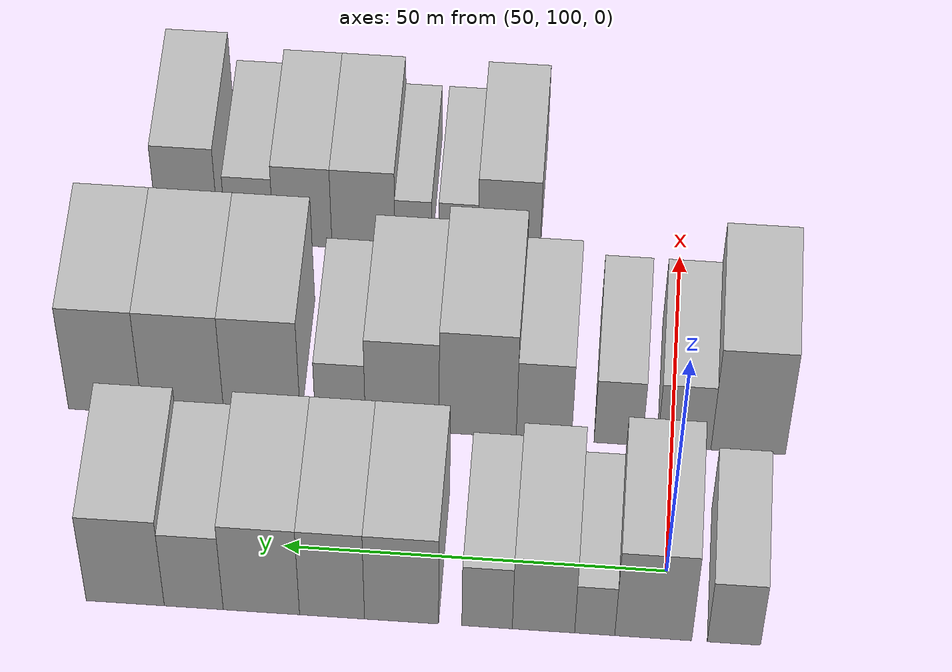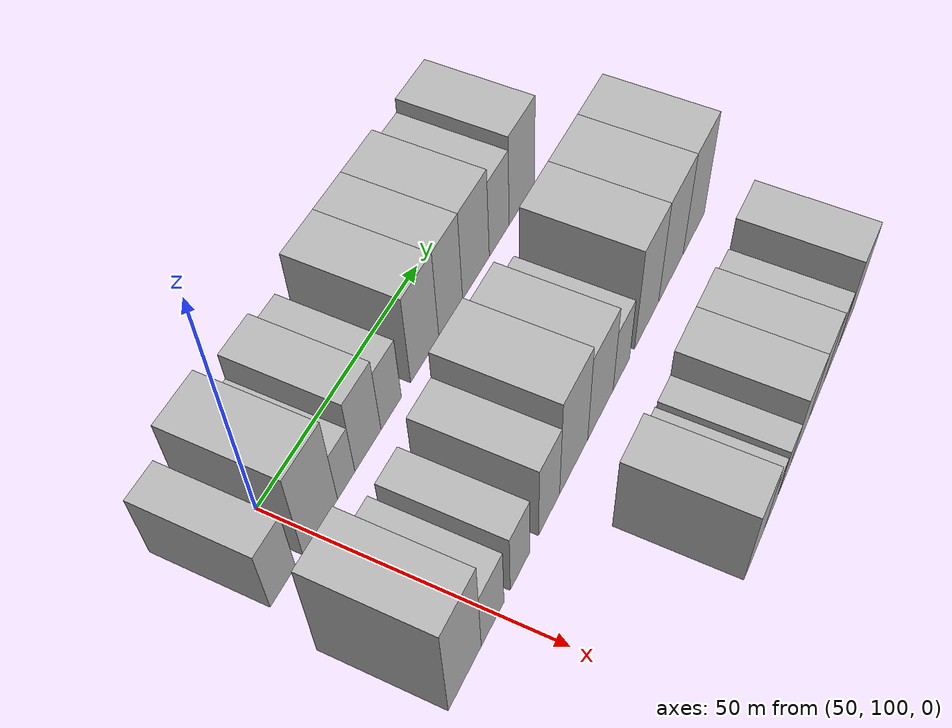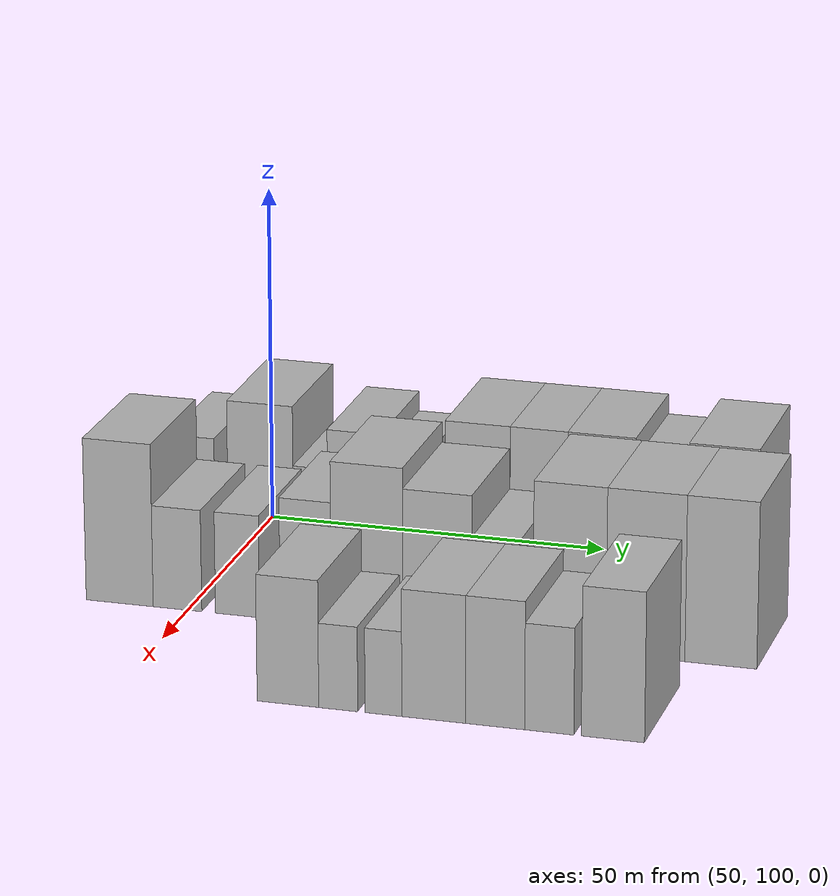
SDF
<sdf version="1.6">
 <world name="default">
  <model name="building_44">
   <static>1</static>
   <pose>50.0000 91.0209 0 0.000000 0.000000 0.000000</pose>
   <link name="link">
    <pose>0 0 7.50 0 0 0</pose>
    <collision name="collision"><geometry><box><size>20.0000 6.8283 15.0000</size></box></geometry></collision>
    <visual name="visual">
     <cast_shadows>0</cast_shadows>
     <geometry><box><size>20.0000 6.8283 15.0000</size></box></geometry>
     <material>
      <script>
       <uri>model://HANNAS_wall/materials/scripts</uri>
       <uri>model://HANNAS_wall/materials/textures</uri>
       <name>vrc/HANNAS_wall</name>
      </script>
     </material>
    </visual>
   </link>
  </model>
  <model name="building_45">
   <static>1</static>
   <pose>50.0000 101.3744 0 0.000000 0.000000 0.000000</pose>
   <link name="link">
    <pose>0 0 10.50 0 0 0</pose>
    <collision name="collision"><geometry><box><size>20.0000 9.8787 21.0000</size></box></geometry></collision>
    <visual name="visual">
     <cast_shadows>0</cast_shadows>
     <geometry><box><size>20.0000 9.8787 21.0000</size></box></geometry>
     <material>
      <script>
       <uri>model://HANNAS_wall/materials/scripts</uri>
       <uri>model://HANNAS_wall/materials/textures</uri>
       <name>vrc/HANNAS_wall</name>
      </script>
     </material>
    </visual>
   </link>
  </model>
  <model name="building_46">
   <static>1</static>
   <pose>50.0000 108.8931 0 0.000000 0.000000 0.000000</pose>
   <link name="link">
    <pose>0 0 6.00 0 0 0</pose>
    <collision name="collision"><geometry><box><size>20.0000 5.1587 12.0000</size></box></geometry></collision>
    <visual name="visual">
     <cast_shadows>0</cast_shadows>
     <geometry><box><size>20.0000 5.1587 12.0000</size></box></geometry>
     <material>
      <script>
       <uri>model://HANNAS_wall/materials/scripts</uri>
       <uri>model://HANNAS_wall/materials/textures</uri>
       <name>vrc/HANNAS_wall</name>
      </script>
     </material>
    </visual>
   </link>
  </model>
  <model name="building_47">
   <static>1</static>
   <pose>50.0000 115.4869 0 0.000000 0.000000 0.000000</pose>
   <link name="link">
    <pose>0 0 9.00 0 0 0</pose>
    <collision name="collision"><geometry><box><size>20.0000 8.0289 18.0000</size></box></geometry></collision>
    <visual name="visual">
     <cast_shadows>0</cast_shadows>
     <geometry><box><size>20.0000 8.0289 18.0000</size></box></geometry>
     <material>
      <script>
       <uri>model://HANNAS_wall/materials/scripts</uri>
       <uri>model://HANNAS_wall/materials/textures</uri>
       <name>vrc/HANNAS_wall</name>
      </script>
     </material>
    </visual>
   </link>
  </model>
  <model name="building_48">
   <static>1</static>
   <pose>50.0000 122.7543 0 0.000000 0.000000 0.000000</pose>
   <link name="link">
    <pose>0 0 7.50 0 0 0</pose>
    <collision name="collision"><geometry><box><size>20.0000 6.5058 15.0000</size></box></geometry></collision>
    <visual name="visual">
     <cast_shadows>0</cast_shadows>
     <geometry><box><size>20.0000 6.5058 15.0000</size></box></geometry>
     <material>
      <script>
       <uri>model://HANNAS_wall/materials/scripts</uri>
       <uri>model://HANNAS_wall/materials/textures</uri>
       <name>vrc/HANNAS_wall</name>
      </script>
     </material>
    </visual>
   </link>
  </model>
  <model name="building_49">
   <static>1</static>
   <pose>50.0000 133.7880 0 0.000000 0.000000 0.000000</pose>
   <link name="link">
    <pose>0 0 10.50 0 0 0</pose>
    <collision name="collision"><geometry><box><size>20.0000 9.5616 21.0000</size></box></geometry></collision>
    <visual name="visual">
     <cast_shadows>0</cast_shadows>
     <geometry><box><size>20.0000 9.5616 21.0000</size></box></geometry>
     <material>
      <script>
       <uri>model://HANNAS_wall/materials/scripts</uri>
       <uri>model://HANNAS_wall/materials/textures</uri>
       <name>vrc/HANNAS_wall</name>
      </script>
     </material>
    </visual>
   </link>
  </model>
  <model name="building_50">
   <static>1</static>
   <pose>50.0000 142.7732 0 0.000000 0.000000 0.000000</pose>
   <link name="link">
    <pose>0 0 10.50 0 0 0</pose>
    <collision name="collision"><geometry><box><size>20.0000 8.4089 21.0000</size></box></geometry></collision>
    <visual name="visual">
     <cast_shadows>0</cast_shadows>
     <geometry><box><size>20.0000 8.4089 21.0000</size></box></geometry>
     <material>
      <script>
       <uri>model://HANNAS_wall/materials/scripts</uri>
       <uri>model://HANNAS_wall/materials/textures</uri>
       <name>vrc/HANNAS_wall</name>
      </script>
     </material>
    </visual>
   </link>
  </model>
  <model name="building_51">
   <static>1</static>
   <pose>50.0000 151.9215 0 0.000000 0.000000 0.000000</pose>
   <link name="link">
    <pose>0 0 10.50 0 0 0</pose>
    <collision name="collision"><geometry><box><size>20.0000 9.8877 21.0000</size></box></geometry></collision>
    <visual name="visual">
     <cast_shadows>0</cast_shadows>
     <geometry><box><size>20.0000 9.8877 21.0000</size></box></geometry>
     <material>
      <script>
       <uri>model://HANNAS_wall/materials/scripts</uri>
       <uri>model://HANNAS_wall/materials/textures</uri>
       <name>vrc/HANNAS_wall</name>
      </script>
     </material>
    </visual>
   </link>
  </model>
  <model name="building_52">
   <static>1</static>
   <pose>50.0000 160.6932 0 0.000000 0.000000 0.000000</pose>
   <link name="link">
    <pose>0 0 9.00 0 0 0</pose>
    <collision name="collision"><geometry><box><size>20.0000 7.6557 18.0000</size></box></geometry></collision>
    <visual name="visual">
     <cast_shadows>0</cast_shadows>
     <geometry><box><size>20.0000 7.6557 18.0000</size></box></geometry>
     <material>
      <script>
       <uri>model://HANNAS_wall/materials/scripts</uri>
       <uri>model://HANNAS_wall/materials/textures</uri>
       <name>vrc/HANNAS_wall</name>
      </script>
     </material>
    </visual>
   </link>
  </model>
  <model name="building_53">
   <static>1</static>
   <pose>50.0000 169.5946 0 0.000000 0.000000 0.000000</pose>
   <link name="link">
    <pose>0 0 10.50 0 0 0</pose>
    <collision name="collision"><geometry><box><size>20.0000 10.1472 21.0000</size></box></geometry></collision>
    <visual name="visual">
     <cast_shadows>0</cast_shadows>
     <geometry><box><size>20.0000 10.1472 21.0000</size></box></geometry>
     <material>
      <script>
       <uri>model://HANNAS_wall/materials/scripts</uri>
       <uri>model://HANNAS_wall/materials/textures</uri>
       <name>vrc/HANNAS_wall</name>
      </script>
     </material>
    </visual>
   </link>
  </model>
  <model name="building_121">
   <static>1</static>
   <pose>79.0000 89.9019 0 0.000000 0.000000 0.000000</pose>
   <link name="link">
    <pose>0 0 12.00 0 0 0</pose>
    <collision name="collision"><geometry><box><size>20.0000 9.8923 24.0000</size></box></geometry></collision>
    <visual name="visual">
     <cast_shadows>0</cast_shadows>
     <geometry><box><size>20.0000 9.8923 24.0000</size></box></geometry>
     <material>
      <script>
       <uri>model://HANNAS_wall/materials/scripts</uri>
       <uri>model://HANNAS_wall/materials/textures</uri>
       <name>vrc/HANNAS_wall</name>
      </script>
     </material>
    </visual>
   </link>
  </model>
  <model name="building_122">
   <static>1</static>
   <pose>79.0000 98.4163 0 0.000000 0.000000 0.000000</pose>
   <link name="link">
    <pose>0 0 7.50 0 0 0</pose>
    <collision name="collision"><geometry><box><size>20.0000 7.1365 15.0000</size></box></geometry></collision>
    <visual name="visual">
     <cast_shadows>0</cast_shadows>
     <geometry><box><size>20.0000 7.1365 15.0000</size></box></geometry>
     <material>
      <script>
       <uri>model://HANNAS_wall/materials/scripts</uri>
       <uri>model://HANNAS_wall/materials/textures</uri>
       <name>vrc/HANNAS_wall</name>
      </script>
     </material>
    </visual>
   </link>
  </model>
  <model name="building_123">
   <static>1</static>
   <pose>79.0000 107.1962 0 0.000000 0.000000 0.000000</pose>
   <link name="link">
    <pose>0 0 7.50 0 0 0</pose>
    <collision name="collision"><geometry><box><size>20.0000 6.4234 15.0000</size></box></geometry></collision>
    <visual name="visual">
     <cast_shadows>0</cast_shadows>
     <geometry><box><size>20.0000 6.4234 15.0000</size></box></geometry>
     <material>
      <script>
       <uri>model://HANNAS_wall/materials/scripts</uri>
       <uri>model://HANNAS_wall/materials/textures</uri>
       <name>vrc/HANNAS_wall</name>
      </script>
     </material>
    </visual>
   </link>
  </model>
  <model name="building_124">
   <static>1</static>
   <pose>79.0000 117.0967 0 0.000000 0.000000 0.000000</pose>
   <link name="link">
    <pose>0 0 9.00 0 0 0</pose>
    <collision name="collision"><geometry><box><size>20.0000 7.3776 18.0000</size></box></geometry></collision>
    <visual name="visual">
     <cast_shadows>0</cast_shadows>
     <geometry><box><size>20.0000 7.3776 18.0000</size></box></geometry>
     <material>
      <script>
       <uri>model://HANNAS_wall/materials/scripts</uri>
       <uri>model://HANNAS_wall/materials/textures</uri>
       <name>vrc/HANNAS_wall</name>
      </script>
     </material>
    </visual>
   </link>
  </model>
  <model name="building_125">
   <static>1</static>
   <pose>79.0000 125.9380 0 0.000000 0.000000 0.000000</pose>
   <link name="link">
    <pose>0 0 12.00 0 0 0</pose>
    <collision name="collision"><geometry><box><size>20.0000 10.3051 24.0000</size></box></geometry></collision>
    <visual name="visual">
     <cast_shadows>0</cast_shadows>
     <geometry><box><size>20.0000 10.3051 24.0000</size></box></geometry>
     <material>
      <script>
       <uri>model://HANNAS_wall/materials/scripts</uri>
       <uri>model://HANNAS_wall/materials/textures</uri>
       <name>vrc/HANNAS_wall</name>
      </script>
     </material>
    </visual>
   </link>
  </model>
  <model name="building_126">
   <static>1</static>
   <pose>79.0000 136.0108 0 0.000000 0.000000 0.000000</pose>
   <link name="link">
    <pose>0 0 10.50 0 0 0</pose>
    <collision name="collision"><geometry><box><size>20.0000 9.8404 21.0000</size></box></geometry></collision>
    <visual name="visual">
     <cast_shadows>0</cast_shadows>
     <geometry><box><size>20.0000 9.8404 21.0000</size></box></geometry>
     <material>
      <script>
       <uri>model://HANNAS_wall/materials/scripts</uri>
       <uri>model://HANNAS_wall/materials/textures</uri>
       <name>vrc/HANNAS_wall</name>
      </script>
     </material>
    </visual>
   </link>
  </model>
  <model name="building_127">
   <static>1</static>
   <pose>79.0000 144.2754 0 0.000000 0.000000 0.000000</pose>
   <link name="link">
    <pose>0 0 7.50 0 0 0</pose>
    <collision name="collision"><geometry><box><size>20.0000 6.6889 15.0000</size></box></geometry></collision>
    <visual name="visual">
     <cast_shadows>0</cast_shadows>
     <geometry><box><size>20.0000 6.6889 15.0000</size></box></geometry>
     <material>
      <script>
       <uri>model://HANNAS_wall/materials/scripts</uri>
       <uri>model://HANNAS_wall/materials/textures</uri>
       <name>vrc/HANNAS_wall</name>
      </script>
     </material>
    </visual>
   </link>
  </model>
  <model name="building_128">
   <static>1</static>
   <pose>79.0000 154.7513 0 0.000000 0.000000 0.000000</pose>
   <link name="link">
    <pose>0 0 12.00 0 0 0</pose>
    <collision name="collision"><geometry><box><size>20.0000 10.2628 24.0000</size></box></geometry></collision>
    <visual name="visual">
     <cast_shadows>0</cast_shadows>
     <geometry><box><size>20.0000 10.2628 24.0000</size></box></geometry>
     <material>
      <script>
       <uri>model://HANNAS_wall/materials/scripts</uri>
       <uri>model://HANNAS_wall/materials/textures</uri>
       <name>vrc/HANNAS_wall</name>
      </script>
     </material>
    </visual>
   </link>
  </model>
  <model name="building_129">
   <static>1</static>
   <pose>79.0000 165.3907 0 0.000000 0.000000 0.000000</pose>
   <link name="link">
    <pose>0 0 12.00 0 0 0</pose>
    <collision name="collision"><geometry><box><size>20.0000 11.0159 24.0000</size></box></geometry></collision>
    <visual name="visual">
     <cast_shadows>0</cast_shadows>
     <geometry><box><size>20.0000 11.0159 24.0000</size></box></geometry>
     <material>
      <script>
       <uri>model://HANNAS_wall/materials/scripts</uri>
       <uri>model://HANNAS_wall/materials/textures</uri>
       <name>vrc/HANNAS_wall</name>
      </script>
     </material>
    </visual>
   </link>
  </model>
  <model name="building_130">
   <static>1</static>
   <pose>79.0000 175.8826 0 0.000000 0.000000 0.000000</pose>
   <link name="link">
    <pose>0 0 12.00 0 0 0</pose>
    <collision name="collision"><geometry><box><size>20.0000 9.9679 24.0000</size></box></geometry></collision>
    <visual name="visual">
     <cast_shadows>0</cast_shadows>
     <geometry><box><size>20.0000 9.9679 24.0000</size></box></geometry>
     <material>
      <script>
       <uri>model://HANNAS_wall/materials/scripts</uri>
       <uri>model://HANNAS_wall/materials/textures</uri>
       <name>vrc/HANNAS_wall</name>
      </script>
     </material>
    </visual>
   </link>
  </model>
  <model name="building_193">
   <static>1</static>
   <pose>108.0000 123.5994 0 0.000000 0.000000 0.000000</pose>
   <link name="link">
    <pose>0 0 9.00 0 0 0</pose>
    <collision name="collision"><geometry><box><size>20.0000 8.5537 18.0000</size></box></geometry></collision>
    <visual name="visual">
     <cast_shadows>0</cast_shadows>
     <geometry><box><size>20.0000 8.5537 18.0000</size></box></geometry>
     <material>
      <script>
       <uri>model://HANNAS_wall/materials/scripts</uri>
       <uri>model://HANNAS_wall/materials/textures</uri>
       <name>vrc/HANNAS_wall</name>
      </script>
     </material>
    </visual>
   </link>
  </model>
  <model name="building_194">
   <static>1</static>
   <pose>108.0000 130.5719 0 0.000000 0.000000 0.000000</pose>
   <link name="link">
    <pose>0 0 6.00 0 0 0</pose>
    <collision name="collision"><geometry><box><size>20.0000 5.3914 12.0000</size></box></geometry></collision>
    <visual name="visual">
     <cast_shadows>0</cast_shadows>
     <geometry><box><size>20.0000 5.3914 12.0000</size></box></geometry>
     <material>
      <script>
       <uri>model://HANNAS_wall/materials/scripts</uri>
       <uri>model://HANNAS_wall/materials/textures</uri>
       <name>vrc/HANNAS_wall</name>
      </script>
     </material>
    </visual>
   </link>
  </model>
  <model name="building_195">
   <static>1</static>
   <pose>108.0000 136.7985 0 0.000000 0.000000 0.000000</pose>
   <link name="link">
    <pose>0 0 6.00 0 0 0</pose>
    <collision name="collision"><geometry><box><size>20.0000 5.0616 12.0000</size></box></geometry></collision>
    <visual name="visual">
     <cast_shadows>0</cast_shadows>
     <geometry><box><size>20.0000 5.0616 12.0000</size></box></geometry>
     <material>
      <script>
       <uri>model://HANNAS_wall/materials/scripts</uri>
       <uri>model://HANNAS_wall/materials/textures</uri>
       <name>vrc/HANNAS_wall</name>
      </script>
     </material>
    </visual>
   </link>
  </model>
  <model name="building_196">
   <static>1</static>
   <pose>108.0000 143.7020 0 0.000000 0.000000 0.000000</pose>
   <link name="link">
    <pose>0 0 9.00 0 0 0</pose>
    <collision name="collision"><geometry><box><size>20.0000 8.7454 18.0000</size></box></geometry></collision>
    <visual name="visual">
     <cast_shadows>0</cast_shadows>
     <geometry><box><size>20.0000 8.7454 18.0000</size></box></geometry>
     <material>
      <script>
       <uri>model://HANNAS_wall/materials/scripts</uri>
       <uri>model://HANNAS_wall/materials/textures</uri>
       <name>vrc/HANNAS_wall</name>
      </script>
     </material>
    </visual>
   </link>
  </model>
  <model name="building_197">
   <static>1</static>
   <pose>108.0000 152.0857 0 0.000000 0.000000 0.000000</pose>
   <link name="link">
    <pose>0 0 9.00 0 0 0</pose>
    <collision name="collision"><geometry><box><size>20.0000 8.0220 18.0000</size></box></geometry></collision>
    <visual name="visual">
     <cast_shadows>0</cast_shadows>
     <geometry><box><size>20.0000 8.0220 18.0000</size></box></geometry>
     <material>
      <script>
       <uri>model://HANNAS_wall/materials/scripts</uri>
       <uri>model://HANNAS_wall/materials/textures</uri>
       <name>vrc/HANNAS_wall</name>
      </script>
     </material>
    </visual>
   </link>
  </model>
  <model name="building_198">
   <static>1</static>
   <pose>108.0000 159.4199 0 0.000000 0.000000 0.000000</pose>
   <link name="link">
    <pose>0 0 7.50 0 0 0</pose>
    <collision name="collision"><geometry><box><size>20.0000 6.6463 15.0000</size></box></geometry></collision>
    <visual name="visual">
     <cast_shadows>0</cast_shadows>
     <geometry><box><size>20.0000 6.6463 15.0000</size></box></geometry>
     <material>
      <script>
       <uri>model://HANNAS_wall/materials/scripts</uri>
       <uri>model://HANNAS_wall/materials/textures</uri>
       <name>vrc/HANNAS_wall</name>
      </script>
     </material>
    </visual>
   </link>
  </model>
  <model name="building_199">
   <static>1</static>
   <pose>108.0000 167.9925 0 0.000000 0.000000 0.000000</pose>
   <link name="link">
    <pose>0 0 10.50 0 0 0</pose>
    <collision name="collision"><geometry><box><size>20.0000 8.4989 21.0000</size></box></geometry></collision>
    <visual name="visual">
     <cast_shadows>0</cast_shadows>
     <geometry><box><size>20.0000 8.4989 21.0000</size></box></geometry>
     <material>
      <script>
       <uri>model://HANNAS_wall/materials/scripts</uri>
       <uri>model://HANNAS_wall/materials/textures</uri>
       <name>vrc/HANNAS_wall</name>
      </script>
     </material>
    </visual>
   </link>
  </model>
 </world>
</sdf>
